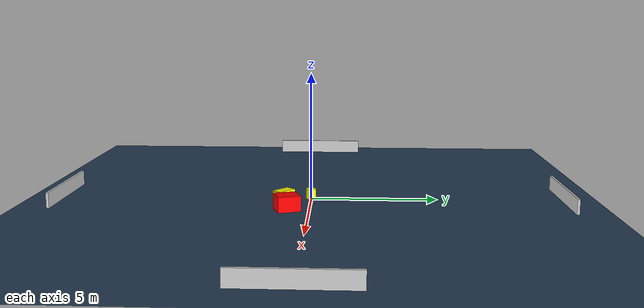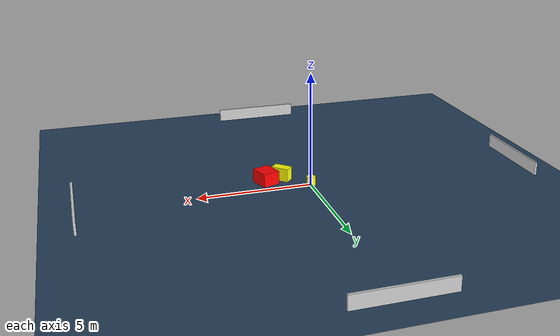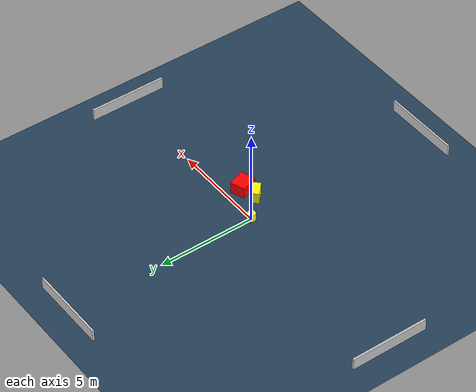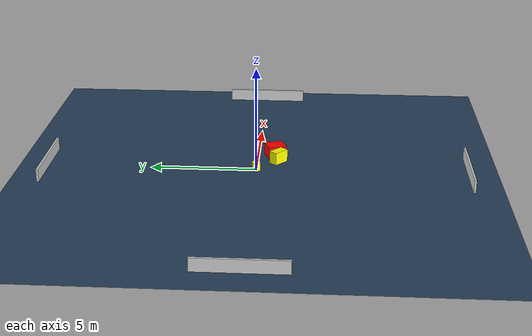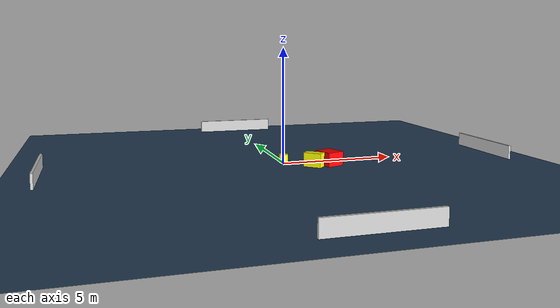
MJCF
<?xml version="1.0" ?>
<mujoco model="generated_environment">
  <option timestep="0.01" integrator="RK4" cone="elliptic"/>
  <default>
    <geom density="1"/>
  </default>
  <asset>
    <texture builtin="gradient" height="3072" name="skybox" rgb1="0.3 0.5 0.7" rgb2="0 0 0" type="skybox" width="512"/>
    <texture builtin="checker" height="300" name="groundplane" rgb1="0.2 0.3 0.4" rgb2="0.1 0.2 0.3" type="2d" width="300"/>
    <material name="groundplane" reflectance="0.2" texrepeat="5 5" texture="groundplane"/>
  </asset>
  <worldbody>
    <light dir="0 0 -1" directional="true" pos="0 0 1.5"/>
    <geom condim="3" friction="0.5 0.005 0.001" material="groundplane" name="floor" pos="0 0 0" size="0 0 0.05" type="plane"/>
    <body name="walls">
      <geom name="wall_1" condim="4" pos="-10.0 0.0 0.3" rgba="0.800000011920929 0.800000011920929 0.800000011920929 1.0" size="0.05 2.0 0.3" type="box"/>
      <geom name="wall_2" condim="4" pos="10.0 0.0 0.3" rgba="0.800000011920929 0.800000011920929 0.800000011920929 1.0" size="0.05 2.0 0.3" type="box"/>
      <geom name="wall_3" condim="4" pos="0.0 -10.0 0.3" rgba="0.800000011920929 0.800000011920929 0.800000011920929 1.0" size="2.0 0.05 0.3" type="box"/>
      <geom name="wall_4" condim="4" pos="0.0 10.0 0.3" rgba="0.800000011920929 0.800000011920929 0.800000011920929 1.0" size="2.0 0.05 0.3" type="box"/>
    </body>
    <body name="robot">
      <joint name="joint_x" type="slide" pos="0 0 0" axis="1 0 0"/>
      <joint name="joint_y" type="slide" pos="0 0 0" axis="0 1 0"/>
      <geom name="robot" type="cylinder" pos="0.0 0.0 0.2" size="0.2 0.2 0.0" mass="5.0" friction="1.0 0.005 0.0001" condim="4" rgba="1.0 1.0 0.0 1.0"/>
    </body>
    <body name="obstacle_1_movable">
      <geom name="obstacle_1_movable" condim="4" pos="1.0456774878890496 -1.0054844074176974 0.3" euler="0 0 227.17101513767827" friction="0.0 0.005 0.001" rgba="1.0 1.0 0.0 1.0" size="0.21678671420912118 0.38819929538454684 0.3" type="box" mass="0.1"/>
      <joint type="free"/>
    </body>
    <body name="obstacle_2_static">
      <geom name="obstacle_2_static" condim="4" pos="1.8081060036484946 -0.8298977298565867 0.3" euler="0 0 19.254222859807246" friction="0.0 0.005 0.001" rgba="1.0 0.0 0.0 1.0" size="0.3854903855769448 0.44498580380948705 0.3" type="box"/>
    </body>
  </worldbody>
  <actuator>
    <motor name="actuator_x" joint="joint_x" gear="1" ctrlrange="-1 1"/>
    <motor name="actuator_y" joint="joint_y" gear="1" ctrlrange="-1 1"/>
  </actuator>
</mujoco>
